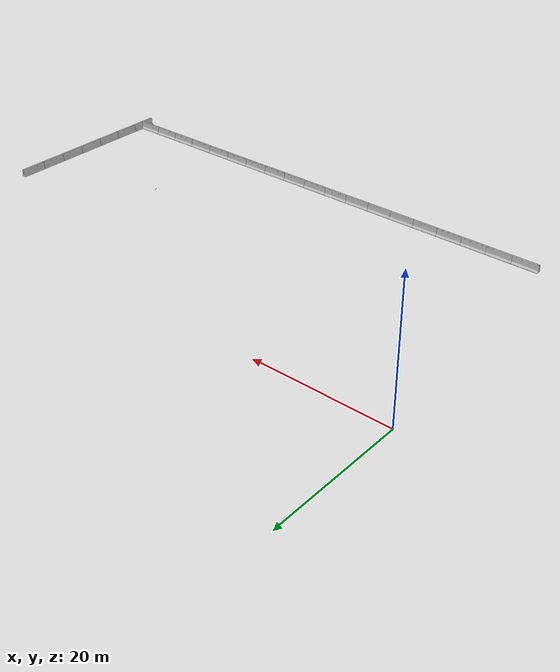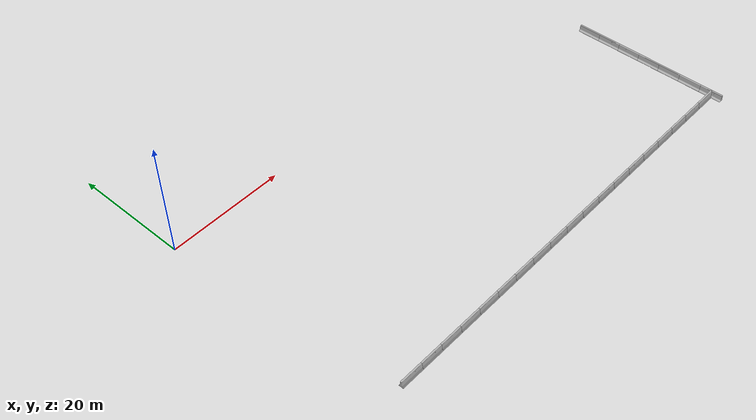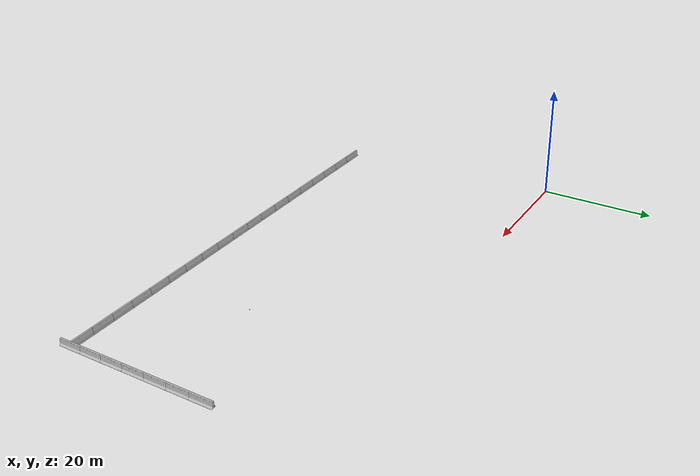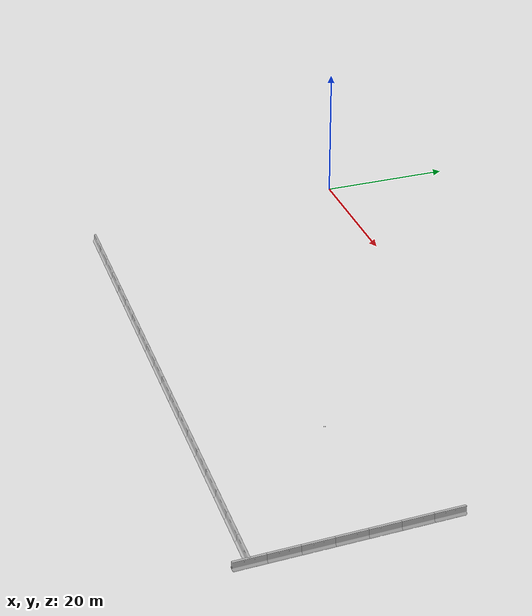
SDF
<sdf version="1.4">
 <world name="default">
  <include><uri>model://sun</uri></include>
  <model name="wrench10">
   <pose>60.17 -23.75 0.54675 1.57079632679 0 1.57079632679</pose>
   <static>0</static>
   <link name="link">
    <inertial>
     <mass>0.0847</mass>
     <pose>0 0 0 -0.122173 0 0</pose>
     <inertia>
      <ixx>0.000185</ixx>
      <ixy>0.0000000</ixy>
      <ixz>-0.000000</ixz>
      <iyy>0.00000522</iyy>
      <iyz>-0.00000</iyz>
      <izz>0.000184</izz>
     </inertia>
    </inertial>
    <visual name="visual">
     <geometry><mesh><uri>file://wrench.DAE</uri><scale>0.77 0.77 1</scale></mesh></geometry>
     <material>
      <script><uri>file://media/materials/scripts/gazebo.material</uri><name>Gazebo/Grey</name></script>
      <shader type="pixel"><normal_map>__default__</normal_map></shader>
      <ambient>0.3 0.3 0.3 1</ambient>
      <diffuse>0.7 0.7 0.7 1</diffuse>
      <specular>0.01 0.01 0.01 1</specular>
      <emissive>0 0 0 1</emissive>
     </material>
    </visual>
    <collision name="collision">
     <geometry><mesh><uri>file://wrench.DAE</uri><scale>0.77 0.77 1</scale></mesh></geometry>
     <surface><friction><ode><mu>0.3</mu><mu2>0.3</mu2></ode></friction></surface>
    </collision>
   </link>
  </model>
  <model name="wrench12">
   <pose>60.17 -23.55 0.535 1.57079632679 0 1.57079632679</pose>
   <static>0</static>
   <link name="link">
    <inertial>
     <mass>0.0847</mass>
     <pose>0 0 0 -0.122173 0 0</pose>
     <inertia>
      <ixx>0.000185</ixx>
      <ixy>0.0000000</ixy>
      <ixz>-0.000000</ixz>
      <iyy>0.00000522</iyy>
      <iyz>-0.00000</iyz>
      <izz>0.000184</izz>
     </inertia>
    </inertial>
    <visual name="visual">
     <geometry><mesh><uri>file://wrench.DAE</uri><scale>0.92 0.92 1</scale></mesh></geometry>
     <material>
      <script><uri>file://media/materials/scripts/gazebo.material</uri><name>Gazebo/Grey</name></script>
      <shader type="pixel"><normal_map>__default__</normal_map></shader>
      <ambient>0.3 0.3 0.3 1</ambient>
      <diffuse>0.7 0.7 0.7 1</diffuse>
      <specular>0.01 0.01 0.01 1</specular>
      <emissive>0 0 0 1</emissive>
     </material>
    </visual>
    <collision name="collision">
     <geometry><mesh><uri>file://wrench.DAE</uri><scale>0.92 0.92 1</scale></mesh></geometry>
     <surface><friction><ode><mu>0.3</mu><mu2>0.3</mu2></ode></friction></surface>
    </collision>
   </link>
  </model>
  <model name="wrench13">
   <pose>60.17 -23.60 0.53 1.57079632679 0 1.57079632679</pose>
   <static>0</static>
   <link name="link">
    <inertial>
     <mass>0.0847</mass>
     <pose>0 0 0 -0.122173 0 0</pose>
     <inertia>
      <ixx>0.000185</ixx>
      <ixy>0.0000000</ixy>
      <ixz>-0.000000</ixz>
      <iyy>0.00000522</iyy>
      <iyz>-0.00000</iyz>
      <izz>0.000184</izz>
     </inertia>
    </inertial>
    <visual name="visual">
     <geometry><mesh><uri>file://wrench.DAE</uri><scale>1 1 1</scale></mesh></geometry>
     <material>
      <script><uri>file://media/materials/scripts/gazebo.material</uri><name>Gazebo/Grey</name></script>
      <shader type="pixel"><normal_map>__default__</normal_map></shader>
      <ambient>0.3 0.3 0.3 1</ambient>
      <diffuse>0.7 0.7 0.7 1</diffuse>
      <specular>0.01 0.01 0.01 1</specular>
      <emissive>0 0 0 1</emissive>
     </material>
    </visual>
    <collision name="collision">
     <geometry><mesh><uri>file://wrench.DAE</uri><scale>1 1 1</scale></mesh></geometry>
     <surface><friction><ode><mu>0.3</mu><mu2>0.3</mu2></ode></friction></surface>
    </collision>
   </link>
  </model>
  <model name="wrench18">
   <pose>60.172 -23.70 0.505 1.57079632679 0 1.57079632679</pose>
   <static>0</static>
   <link name="link">
    <inertial>
     <mass>0.3</mass>
     <pose>0 0 0 -0.122173 0 0</pose>
     <inertia>
      <ixx>1.185</ixx>
      <ixy>0.0000000</ixy>
      <ixz>-0.000000</ixz>
      <iyy>1.00522</iyy>
      <iyz>-0.00000</iyz>
      <izz>1.184</izz>
     </inertia>
    </inertial>
    <visual name="visual">
     <geometry><mesh><uri>file://wrench.DAE</uri><scale>1.38 1.38 1</scale></mesh></geometry>
     <material>
      <script><uri>file://media/materials/scripts/gazebo.material</uri><name>Gazebo/Grey</name></script>
      <shader type="pixel"><normal_map>__default__</normal_map></shader>
      <ambient>0.3 0.3 0.3 1</ambient>
      <diffuse>0.7 0.7 0.7 1</diffuse>
      <specular>0.01 0.01 0.01 1</specular>
      <emissive>0 0 0 1</emissive>
     </material>
    </visual>
    <collision name="collision">
     <geometry><mesh><uri>file://wrench.DAE</uri><scale>1.38 1.38 1</scale></mesh></geometry>
     <surface><friction><ode><mu>0.7</mu><mu2>0.7</mu2></ode></friction></surface>
    </collision>
   </link>
  </model>
  <model name="wrench11">
   <pose>60.17 -23.80 0.54675 1.57079632679 0 1.57079632679</pose>
   <static>0</static>
   <link name="link">
    <inertial>
     <mass>0.0847</mass>
     <pose>0 0 0 -0.122173 0 0</pose>
     <inertia>
      <ixx>0.000185</ixx>
      <ixy>0.0000000</ixy>
      <ixz>-0.000000</ixz>
      <iyy>0.00000522</iyy>
      <iyz>-0.00000</iyz>
      <izz>0.000184</izz>
     </inertia>
    </inertial>
    <visual name="visual">
     <geometry><mesh><uri>file://wrench.DAE</uri><scale>0.77 0.77 1</scale></mesh></geometry>
     <material>
      <script><uri>file://media/materials/scripts/gazebo.material</uri><name>Gazebo/Grey</name></script>
      <shader type="pixel"><normal_map>__default__</normal_map></shader>
      <ambient>0.3 0.3 0.3 1</ambient>
      <diffuse>0.7 0.7 0.7 1</diffuse>
      <specular>0.01 0.01 0.01 1</specular>
      <emissive>0 0 0 1</emissive>
     </material>
    </visual>
    <collision name="collision">
     <geometry><mesh><uri>file://wrench.DAE</uri><scale>0.77 0.77 1</scale></mesh></geometry>
     <surface><friction><ode><mu>0.3</mu><mu2>0.3</mu2></ode></friction></surface>
    </collision>
   </link>
  </model>
  <model name="wrench14">
   <pose>60.17 -23.65 0.54675 1.57079632679 0 1.57079632679</pose>
   <static>0</static>
   <link name="link">
    <inertial>
     <mass>0.0847</mass>
     <pose>0 0 0 -0.122173 0 0</pose>
     <inertia>
      <ixx>0.000185</ixx>
      <ixy>0.0000000</ixy>
      <ixz>-0.000000</ixz>
      <iyy>0.00000522</iyy>
      <iyz>-0.00000</iyz>
      <izz>0.000184</izz>
     </inertia>
    </inertial>
    <visual name="visual">
     <geometry><mesh><uri>file://wrench.DAE</uri><scale>0.77 0.77 1</scale></mesh></geometry>
     <material>
      <script><uri>file://media/materials/scripts/gazebo.material</uri><name>Gazebo/Grey</name></script>
      <shader type="pixel"><normal_map>__default__</normal_map></shader>
      <ambient>0.3 0.3 0.3 1</ambient>
      <diffuse>0.7 0.7 0.7 1</diffuse>
      <specular>0.01 0.01 0.01 1</specular>
      <emissive>0 0 0 1</emissive>
     </material>
    </visual>
    <collision name="collision">
     <geometry><mesh><uri>file://wrench.DAE</uri><scale>0.77 0.77 1</scale></mesh></geometry>
     <surface><friction><ode><mu>0.3</mu><mu2>0.3</mu2></ode></friction></surface>
    </collision>
   </link>
  </model>
  <model name="jersey_barrier_71">
   <pose>78 -40 0 0 0 0</pose>
   <static>1</static>
   <link name="link">
    <visual name="visual">
     <geometry><mesh><uri>model://jersey_barrier/meshes/jersey_barrier.dae</uri></mesh></geometry>
    </visual>
    <collision name="upright">
     <pose>0 0 0.5715 0 -0 0</pose>
     <geometry><box><size>4.06542 0.3063 1.143</size></box></geometry>
    </collision>
    <collision name="base">
     <pose>0 0 0.032258 0 -0 0</pose>
     <geometry><box><size>4.06542 0.8107 0.064516</size></box></geometry>
    </collision>
    <collision name="base2">
     <pose>0 0 0.1 0 -0 0</pose>
     <geometry><box><size>4.06542 0.65 0.1</size></box></geometry>
    </collision>
    <collision name="base3">
     <pose>0 0 0.2 0 -0 0</pose>
     <geometry><box><size>4.06542 0.5 0.1</size></box></geometry>
    </collision>
    <collision name="left-angle">
     <pose>0 -0.224 0.2401 0.9 -0 0</pose>
     <geometry><box><size>4.06542 0.5 0.064516</size></box></geometry>
    </collision>
    <collision name="right-angle">
     <pose>0 0.224 0.2401 -0.9 0 0</pose>
     <geometry><box><size>4.06542 0.5 0.064516</size></box></geometry>
    </collision>
    <velocity_decay><linear>0</linear><angular>0</angular></velocity_decay>
   </link>
   <pose>-10 -2 0 0 -0 0</pose>
  </model>
  <model name="jersey_barrier_72">
   <pose>74 -40 0 0 0 0</pose>
   <static>1</static>
   <link name="link">
    <visual name="visual">
     <geometry><mesh><uri>model://jersey_barrier/meshes/jersey_barrier.dae</uri></mesh></geometry>
    </visual>
    <collision name="upright">
     <pose>0 0 0.5715 0 -0 0</pose>
     <geometry><box><size>4.06542 0.3063 1.143</size></box></geometry>
    </collision>
    <collision name="base">
     <pose>0 0 0.032258 0 -0 0</pose>
     <geometry><box><size>4.06542 0.8107 0.064516</size></box></geometry>
    </collision>
    <collision name="base2">
     <pose>0 0 0.1 0 -0 0</pose>
     <geometry><box><size>4.06542 0.65 0.1</size></box></geometry>
    </collision>
    <collision name="base3">
     <pose>0 0 0.2 0 -0 0</pose>
     <geometry><box><size>4.06542 0.5 0.1</size></box></geometry>
    </collision>
    <collision name="left-angle">
     <pose>0 -0.224 0.2401 0.9 -0 0</pose>
     <geometry><box><size>4.06542 0.5 0.064516</size></box></geometry>
    </collision>
    <collision name="right-angle">
     <pose>0 0.224 0.2401 -0.9 0 0</pose>
     <geometry><box><size>4.06542 0.5 0.064516</size></box></geometry>
    </collision>
    <velocity_decay><linear>0</linear><angular>0</angular></velocity_decay>
   </link>
   <pose>-9.55113 3 0 0 -0 0</pose>
  </model>
  <model name="jersey_barrier_73">
   <pose>70 -40 0 0 0 0</pose>
   <static>1</static>
   <link name="link">
    <visual name="visual">
     <geometry><mesh><uri>model://jersey_barrier/meshes/jersey_barrier.dae</uri></mesh></geometry>
    </visual>
    <collision name="upright">
     <pose>0 0 0.5715 0 -0 0</pose>
     <geometry><box><size>4.06542 0.3063 1.143</size></box></geometry>
    </collision>
    <collision name="base">
     <pose>0 0 0.032258 0 -0 0</pose>
     <geometry><box><size>4.06542 0.8107 0.064516</size></box></geometry>
    </collision>
    <collision name="base2">
     <pose>0 0 0.1 0 -0 0</pose>
     <geometry><box><size>4.06542 0.65 0.1</size></box></geometry>
    </collision>
    <collision name="base3">
     <pose>0 0 0.2 0 -0 0</pose>
     <geometry><box><size>4.06542 0.5 0.1</size></box></geometry>
    </collision>
    <collision name="left-angle">
     <pose>0 -0.224 0.2401 0.9 -0 0</pose>
     <geometry><box><size>4.06542 0.5 0.064516</size></box></geometry>
    </collision>
    <collision name="right-angle">
     <pose>0 0.224 0.2401 -0.9 0 0</pose>
     <geometry><box><size>4.06542 0.5 0.064516</size></box></geometry>
    </collision>
    <velocity_decay><linear>0</linear><angular>0</angular></velocity_decay>
   </link>
   <pose>9 -8 0 0 -0 0</pose>
  </model>
  <model name="jersey_barrier_74">
   <pose>66 -40 0 0 0 0</pose>
   <static>1</static>
   <link name="link">
    <visual name="visual">
     <geometry><mesh><uri>model://jersey_barrier/meshes/jersey_barrier.dae</uri></mesh></geometry>
    </visual>
    <collision name="upright">
     <pose>0 0 0.5715 0 -0 0</pose>
     <geometry><box><size>4.06542 0.3063 1.143</size></box></geometry>
    </collision>
    <collision name="base">
     <pose>0 0 0.032258 0 -0 0</pose>
     <geometry><box><size>4.06542 0.8107 0.064516</size></box></geometry>
    </collision>
    <collision name="base2">
     <pose>0 0 0.1 0 -0 0</pose>
     <geometry><box><size>4.06542 0.65 0.1</size></box></geometry>
    </collision>
    <collision name="base3">
     <pose>0 0 0.2 0 -0 0</pose>
     <geometry><box><size>4.06542 0.5 0.1</size></box></geometry>
    </collision>
    <collision name="left-angle">
     <pose>0 -0.224 0.2401 0.9 -0 0</pose>
     <geometry><box><size>4.06542 0.5 0.064516</size></box></geometry>
    </collision>
    <collision name="right-angle">
     <pose>0 0.224 0.2401 -0.9 0 0</pose>
     <geometry><box><size>4.06542 0.5 0.064516</size></box></geometry>
    </collision>
    <velocity_decay><linear>0</linear><angular>0</angular></velocity_decay>
   </link>
   <pose>10 7 0 0 -0 0</pose>
  </model>
  <model name="jersey_barrier_75">
   <pose>62 -40 0 0 0 0</pose>
   <static>1</static>
   <link name="link">
    <visual name="visual">
     <geometry><mesh><uri>model://jersey_barrier/meshes/jersey_barrier.dae</uri></mesh></geometry>
    </visual>
    <collision name="upright">
     <pose>0 0 0.5715 0 -0 0</pose>
     <geometry><box><size>4.06542 0.3063 1.143</size></box></geometry>
    </collision>
    <collision name="base">
     <pose>0 0 0.032258 0 -0 0</pose>
     <geometry><box><size>4.06542 0.8107 0.064516</size></box></geometry>
    </collision>
    <collision name="base2">
     <pose>0 0 0.1 0 -0 0</pose>
     <geometry><box><size>4.06542 0.65 0.1</size></box></geometry>
    </collision>
    <collision name="base3">
     <pose>0 0 0.2 0 -0 0</pose>
     <geometry><box><size>4.06542 0.5 0.1</size></box></geometry>
    </collision>
    <collision name="left-angle">
     <pose>0 -0.224 0.2401 0.9 -0 0</pose>
     <geometry><box><size>4.06542 0.5 0.064516</size></box></geometry>
    </collision>
    <collision name="right-angle">
     <pose>0 0.224 0.2401 -0.9 0 0</pose>
     <geometry><box><size>4.06542 0.5 0.064516</size></box></geometry>
    </collision>
    <velocity_decay><linear>0</linear><angular>0</angular></velocity_decay>
   </link>
   <pose>-9 7.4858 0 0 -0 0</pose>
  </model>
  <model name="jersey_barrier_76">
   <pose>58 -40 0 0 0 0</pose>
   <static>1</static>
   <link name="link">
    <visual name="visual">
     <geometry><mesh><uri>model://jersey_barrier/meshes/jersey_barrier.dae</uri></mesh></geometry>
    </visual>
    <collision name="upright">
     <pose>0 0 0.5715 0 -0 0</pose>
     <geometry><box><size>4.06542 0.3063 1.143</size></box></geometry>
    </collision>
    <collision name="base">
     <pose>0 0 0.032258 0 -0 0</pose>
     <geometry><box><size>4.06542 0.8107 0.064516</size></box></geometry>
    </collision>
    <collision name="base2">
     <pose>0 0 0.1 0 -0 0</pose>
     <geometry><box><size>4.06542 0.65 0.1</size></box></geometry>
    </collision>
    <collision name="base3">
     <pose>0 0 0.2 0 -0 0</pose>
     <geometry><box><size>4.06542 0.5 0.1</size></box></geometry>
    </collision>
    <collision name="left-angle">
     <pose>0 -0.224 0.2401 0.9 -0 0</pose>
     <geometry><box><size>4.06542 0.5 0.064516</size></box></geometry>
    </collision>
    <collision name="right-angle">
     <pose>0 0.224 0.2401 -0.9 0 0</pose>
     <geometry><box><size>4.06542 0.5 0.064516</size></box></geometry>
    </collision>
    <velocity_decay><linear>0</linear><angular>0</angular></velocity_decay>
   </link>
   <pose>2.45495 0 0 0 -0 0</pose>
  </model>
  <model name="jersey_barrier_77">
   <pose>54 -40 0 0 0 0</pose>
   <static>1</static>
   <link name="link">
    <visual name="visual">
     <geometry><mesh><uri>model://jersey_barrier/meshes/jersey_barrier.dae</uri></mesh></geometry>
    </visual>
    <collision name="upright">
     <pose>0 0 0.5715 0 -0 0</pose>
     <geometry><box><size>4.06542 0.3063 1.143</size></box></geometry>
    </collision>
    <collision name="base">
     <pose>0 0 0.032258 0 -0 0</pose>
     <geometry><box><size>4.06542 0.8107 0.064516</size></box></geometry>
    </collision>
    <collision name="base2">
     <pose>0 0 0.1 0 -0 0</pose>
     <geometry><box><size>4.06542 0.65 0.1</size></box></geometry>
    </collision>
    <collision name="base3">
     <pose>0 0 0.2 0 -0 0</pose>
     <geometry><box><size>4.06542 0.5 0.1</size></box></geometry>
    </collision>
    <collision name="left-angle">
     <pose>0 -0.224 0.2401 0.9 -0 0</pose>
     <geometry><box><size>4.06542 0.5 0.064516</size></box></geometry>
    </collision>
    <collision name="right-angle">
     <pose>0 0.224 0.2401 -0.9 0 0</pose>
     <geometry><box><size>4.06542 0.5 0.064516</size></box></geometry>
    </collision>
    <velocity_decay><linear>0</linear><angular>0</angular></velocity_decay>
   </link>
   <pose>2.45495 0 0 0 -0 0</pose>
  </model>
  <model name="jersey_barrier_78">
   <pose>50 -40 0 0 0 0</pose>
   <static>1</static>
   <link name="link">
    <visual name="visual">
     <geometry><mesh><uri>model://jersey_barrier/meshes/jersey_barrier.dae</uri></mesh></geometry>
    </visual>
    <collision name="upright">
     <pose>0 0 0.5715 0 -0 0</pose>
     <geometry><box><size>4.06542 0.3063 1.143</size></box></geometry>
    </collision>
    <collision name="base">
     <pose>0 0 0.032258 0 -0 0</pose>
     <geometry><box><size>4.06542 0.8107 0.064516</size></box></geometry>
    </collision>
    <collision name="base2">
     <pose>0 0 0.1 0 -0 0</pose>
     <geometry><box><size>4.06542 0.65 0.1</size></box></geometry>
    </collision>
    <collision name="base3">
     <pose>0 0 0.2 0 -0 0</pose>
     <geometry><box><size>4.06542 0.5 0.1</size></box></geometry>
    </collision>
    <collision name="left-angle">
     <pose>0 -0.224 0.2401 0.9 -0 0</pose>
     <geometry><box><size>4.06542 0.5 0.064516</size></box></geometry>
    </collision>
    <collision name="right-angle">
     <pose>0 0.224 0.2401 -0.9 0 0</pose>
     <geometry><box><size>4.06542 0.5 0.064516</size></box></geometry>
    </collision>
    <velocity_decay><linear>0</linear><angular>0</angular></velocity_decay>
   </link>
   <pose>-10 -2 0 0 -0 0</pose>
  </model>
  <model name="jersey_barrier_79">
   <pose>46 -40 0 0 0 0</pose>
   <static>1</static>
   <link name="link">
    <visual name="visual">
     <geometry><mesh><uri>model://jersey_barrier/meshes/jersey_barrier.dae</uri></mesh></geometry>
    </visual>
    <collision name="upright">
     <pose>0 0 0.5715 0 -0 0</pose>
     <geometry><box><size>4.06542 0.3063 1.143</size></box></geometry>
    </collision>
    <collision name="base">
     <pose>0 0 0.032258 0 -0 0</pose>
     <geometry><box><size>4.06542 0.8107 0.064516</size></box></geometry>
    </collision>
    <collision name="base2">
     <pose>0 0 0.1 0 -0 0</pose>
     <geometry><box><size>4.06542 0.65 0.1</size></box></geometry>
    </collision>
    <collision name="base3">
     <pose>0 0 0.2 0 -0 0</pose>
     <geometry><box><size>4.06542 0.5 0.1</size></box></geometry>
    </collision>
    <collision name="left-angle">
     <pose>0 -0.224 0.2401 0.9 -0 0</pose>
     <geometry><box><size>4.06542 0.5 0.064516</size></box></geometry>
    </collision>
    <collision name="right-angle">
     <pose>0 0.224 0.2401 -0.9 0 0</pose>
     <geometry><box><size>4.06542 0.5 0.064516</size></box></geometry>
    </collision>
    <velocity_decay><linear>0</linear><angular>0</angular></velocity_decay>
   </link>
   <pose>-9.55113 3 0 0 -0 0</pose>
  </model>
  <model name="jersey_barrier_80">
   <pose>42 -40 0 0 0 0</pose>
   <static>1</static>
   <link name="link">
    <visual name="visual">
     <geometry><mesh><uri>model://jersey_barrier/meshes/jersey_barrier.dae</uri></mesh></geometry>
    </visual>
    <collision name="upright">
     <pose>0 0 0.5715 0 -0 0</pose>
     <geometry><box><size>4.06542 0.3063 1.143</size></box></geometry>
    </collision>
    <collision name="base">
     <pose>0 0 0.032258 0 -0 0</pose>
     <geometry><box><size>4.06542 0.8107 0.064516</size></box></geometry>
    </collision>
    <collision name="base2">
     <pose>0 0 0.1 0 -0 0</pose>
     <geometry><box><size>4.06542 0.65 0.1</size></box></geometry>
    </collision>
    <collision name="base3">
     <pose>0 0 0.2 0 -0 0</pose>
     <geometry><box><size>4.06542 0.5 0.1</size></box></geometry>
    </collision>
    <collision name="left-angle">
     <pose>0 -0.224 0.2401 0.9 -0 0</pose>
     <geometry><box><size>4.06542 0.5 0.064516</size></box></geometry>
    </collision>
    <collision name="right-angle">
     <pose>0 0.224 0.2401 -0.9 0 0</pose>
     <geometry><box><size>4.06542 0.5 0.064516</size></box></geometry>
    </collision>
    <velocity_decay><linear>0</linear><angular>0</angular></velocity_decay>
   </link>
   <pose>9 -8 0 0 -0 0</pose>
  </model>
  <model name="jersey_barrier_81">
   <pose>38 -40 0 0 0 0</pose>
   <static>1</static>
   <link name="link">
    <visual name="visual">
     <geometry><mesh><uri>model://jersey_barrier/meshes/jersey_barrier.dae</uri></mesh></geometry>
    </visual>
    <collision name="upright">
     <pose>0 0 0.5715 0 -0 0</pose>
     <geometry><box><size>4.06542 0.3063 1.143</size></box></geometry>
    </collision>
    <collision name="base">
     <pose>0 0 0.032258 0 -0 0</pose>
     <geometry><box><size>4.06542 0.8107 0.064516</size></box></geometry>
    </collision>
    <collision name="base2">
     <pose>0 0 0.1 0 -0 0</pose>
     <geometry><box><size>4.06542 0.65 0.1</size></box></geometry>
    </collision>
    <collision name="base3">
     <pose>0 0 0.2 0 -0 0</pose>
     <geometry><box><size>4.06542 0.5 0.1</size></box></geometry>
    </collision>
    <collision name="left-angle">
     <pose>0 -0.224 0.2401 0.9 -0 0</pose>
     <geometry><box><size>4.06542 0.5 0.064516</size></box></geometry>
    </collision>
    <collision name="right-angle">
     <pose>0 0.224 0.2401 -0.9 0 0</pose>
     <geometry><box><size>4.06542 0.5 0.064516</size></box></geometry>
    </collision>
    <velocity_decay><linear>0</linear><angular>0</angular></velocity_decay>
   </link>
   <pose>10 7 0 0 -0 0</pose>
  </model>
  <model name="jersey_barrier_82">
   <pose>34 -40 0 0 0 0</pose>
   <static>1</static>
   <link name="link">
    <visual name="visual">
     <geometry><mesh><uri>model://jersey_barrier/meshes/jersey_barrier.dae</uri></mesh></geometry>
    </visual>
    <collision name="upright">
     <pose>0 0 0.5715 0 -0 0</pose>
     <geometry><box><size>4.06542 0.3063 1.143</size></box></geometry>
    </collision>
    <collision name="base">
     <pose>0 0 0.032258 0 -0 0</pose>
     <geometry><box><size>4.06542 0.8107 0.064516</size></box></geometry>
    </collision>
    <collision name="base2">
     <pose>0 0 0.1 0 -0 0</pose>
     <geometry><box><size>4.06542 0.65 0.1</size></box></geometry>
    </collision>
    <collision name="base3">
     <pose>0 0 0.2 0 -0 0</pose>
     <geometry><box><size>4.06542 0.5 0.1</size></box></geometry>
    </collision>
    <collision name="left-angle">
     <pose>0 -0.224 0.2401 0.9 -0 0</pose>
     <geometry><box><size>4.06542 0.5 0.064516</size></box></geometry>
    </collision>
    <collision name="right-angle">
     <pose>0 0.224 0.2401 -0.9 0 0</pose>
     <geometry><box><size>4.06542 0.5 0.064516</size></box></geometry>
    </collision>
    <velocity_decay><linear>0</linear><angular>0</angular></velocity_decay>
   </link>
   <pose>-9 7.4858 0 0 -0 0</pose>
  </model>
  <model name="jersey_barrier_83">
   <pose>30 -40 0 0 0 0</pose>
   <static>1</static>
   <link name="link">
    <visual name="visual">
     <geometry><mesh><uri>model://jersey_barrier/meshes/jersey_barrier.dae</uri></mesh></geometry>
    </visual>
    <collision name="upright">
     <pose>0 0 0.5715 0 -0 0</pose>
     <geometry><box><size>4.06542 0.3063 1.143</size></box></geometry>
    </collision>
    <collision name="base">
     <pose>0 0 0.032258 0 -0 0</pose>
     <geometry><box><size>4.06542 0.8107 0.064516</size></box></geometry>
    </collision>
    <collision name="base2">
     <pose>0 0 0.1 0 -0 0</pose>
     <geometry><box><size>4.06542 0.65 0.1</size></box></geometry>
    </collision>
    <collision name="base3">
     <pose>0 0 0.2 0 -0 0</pose>
     <geometry><box><size>4.06542 0.5 0.1</size></box></geometry>
    </collision>
    <collision name="left-angle">
     <pose>0 -0.224 0.2401 0.9 -0 0</pose>
     <geometry><box><size>4.06542 0.5 0.064516</size></box></geometry>
    </collision>
    <collision name="right-angle">
     <pose>0 0.224 0.2401 -0.9 0 0</pose>
     <geometry><box><size>4.06542 0.5 0.064516</size></box></geometry>
    </collision>
    <velocity_decay><linear>0</linear><angular>0</angular></velocity_decay>
   </link>
   <pose>2.45495 0 0 0 -0 0</pose>
  </model>
  <model name="jersey_barrier_84">
   <pose>26 -40 0 0 0 0</pose>
   <static>1</static>
   <link name="link">
    <visual name="visual">
     <geometry><mesh><uri>model://jersey_barrier/meshes/jersey_barrier.dae</uri></mesh></geometry>
    </visual>
    <collision name="upright">
     <pose>0 0 0.5715 0 -0 0</pose>
     <geometry><box><size>4.06542 0.3063 1.143</size></box></geometry>
    </collision>
    <collision name="base">
     <pose>0 0 0.032258 0 -0 0</pose>
     <geometry><box><size>4.06542 0.8107 0.064516</size></box></geometry>
    </collision>
    <collision name="base2">
     <pose>0 0 0.1 0 -0 0</pose>
     <geometry><box><size>4.06542 0.65 0.1</size></box></geometry>
    </collision>
    <collision name="base3">
     <pose>0 0 0.2 0 -0 0</pose>
     <geometry><box><size>4.06542 0.5 0.1</size></box></geometry>
    </collision>
    <collision name="left-angle">
     <pose>0 -0.224 0.2401 0.9 -0 0</pose>
     <geometry><box><size>4.06542 0.5 0.064516</size></box></geometry>
    </collision>
    <collision name="right-angle">
     <pose>0 0.224 0.2401 -0.9 0 0</pose>
     <geometry><box><size>4.06542 0.5 0.064516</size></box></geometry>
    </collision>
    <velocity_decay><linear>0</linear><angular>0</angular></velocity_decay>
   </link>
   <pose>2.45495 0 0 0 -0 0</pose>
  </model>
  <model name="jersey_barrier_85">
   <pose>22 -40 0 0 0 0</pose>
   <static>1</static>
   <link name="link">
    <visual name="visual">
     <geometry><mesh><uri>model://jersey_barrier/meshes/jersey_barrier.dae</uri></mesh></geometry>
    </visual>
    <collision name="upright">
     <pose>0 0 0.5715 0 -0 0</pose>
     <geometry><box><size>4.06542 0.3063 1.143</size></box></geometry>
    </collision>
    <collision name="base">
     <pose>0 0 0.032258 0 -0 0</pose>
     <geometry><box><size>4.06542 0.8107 0.064516</size></box></geometry>
    </collision>
    <collision name="base2">
     <pose>0 0 0.1 0 -0 0</pose>
     <geometry><box><size>4.06542 0.65 0.1</size></box></geometry>
    </collision>
    <collision name="base3">
     <pose>0 0 0.2 0 -0 0</pose>
     <geometry><box><size>4.06542 0.5 0.1</size></box></geometry>
    </collision>
    <collision name="left-angle">
     <pose>0 -0.224 0.2401 0.9 -0 0</pose>
     <geometry><box><size>4.06542 0.5 0.064516</size></box></geometry>
    </collision>
    <collision name="right-angle">
     <pose>0 0.224 0.2401 -0.9 0 0</pose>
     <geometry><box><size>4.06542 0.5 0.064516</size></box></geometry>
    </collision>
    <velocity_decay><linear>0</linear><angular>0</angular></velocity_decay>
   </link>
   <pose>-10 -2 0 0 -0 0</pose>
  </model>
  <model name="jersey_barrier_86">
   <pose>18 -40 0 0 0 0</pose>
   <static>1</static>
   <link name="link">
    <visual name="visual">
     <geometry><mesh><uri>model://jersey_barrier/meshes/jersey_barrier.dae</uri></mesh></geometry>
    </visual>
    <collision name="upright">
     <pose>0 0 0.5715 0 -0 0</pose>
     <geometry><box><size>4.06542 0.3063 1.143</size></box></geometry>
    </collision>
    <collision name="base">
     <pose>0 0 0.032258 0 -0 0</pose>
     <geometry><box><size>4.06542 0.8107 0.064516</size></box></geometry>
    </collision>
    <collision name="base2">
     <pose>0 0 0.1 0 -0 0</pose>
     <geometry><box><size>4.06542 0.65 0.1</size></box></geometry>
    </collision>
    <collision name="base3">
     <pose>0 0 0.2 0 -0 0</pose>
     <geometry><box><size>4.06542 0.5 0.1</size></box></geometry>
    </collision>
    <collision name="left-angle">
     <pose>0 -0.224 0.2401 0.9 -0 0</pose>
     <geometry><box><size>4.06542 0.5 0.064516</size></box></geometry>
    </collision>
    <collision name="right-angle">
     <pose>0 0.224 0.2401 -0.9 0 0</pose>
     <geometry><box><size>4.06542 0.5 0.064516</size></box></geometry>
    </collision>
    <velocity_decay><linear>0</linear><angular>0</angular></velocity_decay>
   </link>
   <pose>-9.55113 3 0 0 -0 0</pose>
  </model>
  <model name="jersey_barrier_87">
   <pose>14 -40 0 0 0 0</pose>
   <static>1</static>
   <link name="link">
    <visual name="visual">
     <geometry><mesh><uri>model://jersey_barrier/meshes/jersey_barrier.dae</uri></mesh></geometry>
    </visual>
    <collision name="upright">
     <pose>0 0 0.5715 0 -0 0</pose>
     <geometry><box><size>4.06542 0.3063 1.143</size></box></geometry>
    </collision>
    <collision name="base">
     <pose>0 0 0.032258 0 -0 0</pose>
     <geometry><box><size>4.06542 0.8107 0.064516</size></box></geometry>
    </collision>
    <collision name="base2">
     <pose>0 0 0.1 0 -0 0</pose>
     <geometry><box><size>4.06542 0.65 0.1</size></box></geometry>
    </collision>
    <collision name="base3">
     <pose>0 0 0.2 0 -0 0</pose>
     <geometry><box><size>4.06542 0.5 0.1</size></box></geometry>
    </collision>
    <collision name="left-angle">
     <pose>0 -0.224 0.2401 0.9 -0 0</pose>
     <geometry><box><size>4.06542 0.5 0.064516</size></box></geometry>
    </collision>
    <collision name="right-angle">
     <pose>0 0.224 0.2401 -0.9 0 0</pose>
     <geometry><box><size>4.06542 0.5 0.064516</size></box></geometry>
    </collision>
    <velocity_decay><linear>0</linear><angular>0</angular></velocity_decay>
   </link>
   <pose>9 -8 0 0 -0 0</pose>
  </model>
  <model name="jersey_barrier_88">
   <pose>10 -40 0 0 0 0</pose>
   <static>1</static>
   <link name="link">
    <visual name="visual">
     <geometry><mesh><uri>model://jersey_barrier/meshes/jersey_barrier.dae</uri></mesh></geometry>
    </visual>
    <collision name="upright">
     <pose>0 0 0.5715 0 -0 0</pose>
     <geometry><box><size>4.06542 0.3063 1.143</size></box></geometry>
    </collision>
    <collision name="base">
     <pose>0 0 0.032258 0 -0 0</pose>
     <geometry><box><size>4.06542 0.8107 0.064516</size></box></geometry>
    </collision>
    <collision name="base2">
     <pose>0 0 0.1 0 -0 0</pose>
     <geometry><box><size>4.06542 0.65 0.1</size></box></geometry>
    </collision>
    <collision name="base3">
     <pose>0 0 0.2 0 -0 0</pose>
     <geometry><box><size>4.06542 0.5 0.1</size></box></geometry>
    </collision>
    <collision name="left-angle">
     <pose>0 -0.224 0.2401 0.9 -0 0</pose>
     <geometry><box><size>4.06542 0.5 0.064516</size></box></geometry>
    </collision>
    <collision name="right-angle">
     <pose>0 0.224 0.2401 -0.9 0 0</pose>
     <geometry><box><size>4.06542 0.5 0.064516</size></box></geometry>
    </collision>
    <velocity_decay><linear>0</linear><angular>0</angular></velocity_decay>
   </link>
   <pose>10 7 0 0 -0 0</pose>
  </model>
  <model name="jersey_barrier_89">
   <pose>6 -40 0 0 0 0</pose>
   <static>1</static>
   <link name="link">
    <visual name="visual">
     <geometry><mesh><uri>model://jersey_barrier/meshes/jersey_barrier.dae</uri></mesh></geometry>
    </visual>
    <collision name="upright">
     <pose>0 0 0.5715 0 -0 0</pose>
     <geometry><box><size>4.06542 0.3063 1.143</size></box></geometry>
    </collision>
    <collision name="base">
     <pose>0 0 0.032258 0 -0 0</pose>
     <geometry><box><size>4.06542 0.8107 0.064516</size></box></geometry>
    </collision>
    <collision name="base2">
     <pose>0 0 0.1 0 -0 0</pose>
     <geometry><box><size>4.06542 0.65 0.1</size></box></geometry>
    </collision>
    <collision name="base3">
     <pose>0 0 0.2 0 -0 0</pose>
     <geometry><box><size>4.06542 0.5 0.1</size></box></geometry>
    </collision>
    <collision name="left-angle">
     <pose>0 -0.224 0.2401 0.9 -0 0</pose>
     <geometry><box><size>4.06542 0.5 0.064516</size></box></geometry>
    </collision>
    <collision name="right-angle">
     <pose>0 0.224 0.2401 -0.9 0 0</pose>
     <geometry><box><size>4.06542 0.5 0.064516</size></box></geometry>
    </collision>
    <velocity_decay><linear>0</linear><angular>0</angular></velocity_decay>
   </link>
   <pose>-9 7.4858 0 0 -0 0</pose>
  </model>
  <model name="jersey_barrier_114">
   <pose>80 -16 0 0 0 1.57079632679</pose>
   <static>1</static>
   <link name="link">
    <visual name="visual">
     <geometry><mesh><uri>model://jersey_barrier/meshes/jersey_barrier.dae</uri></mesh></geometry>
    </visual>
    <collision name="upright">
     <pose>0 0 0.5715 0 -0 0</pose>
     <geometry><box><size>4.06542 0.3063 1.143</size></box></geometry>
    </collision>
    <collision name="base">
     <pose>0 0 0.032258 0 -0 0</pose>
     <geometry><box><size>4.06542 0.8107 0.064516</size></box></geometry>
    </collision>
    <collision name="base2">
     <pose>0 0 0.1 0 -0 0</pose>
     <geometry><box><size>4.06542 0.65 0.1</size></box></geometry>
    </collision>
    <collision name="base3">
     <pose>0 0 0.2 0 -0 0</pose>
     <geometry><box><size>4.06542 0.5 0.1</size></box></geometry>
    </collision>
    <collision name="left-angle">
     <pose>0 -0.224 0.2401 0.9 -0 0</pose>
     <geometry><box><size>4.06542 0.5 0.064516</size></box></geometry>
    </collision>
    <collision name="right-angle">
     <pose>0 0.224 0.2401 -0.9 0 0</pose>
     <geometry><box><size>4.06542 0.5 0.064516</size></box></geometry>
    </collision>
    <velocity_decay><linear>0</linear><angular>0</angular></velocity_decay>
   </link>
   <pose>-7.50675 10 0 0 -0 0</pose>
  </model>
  <model name="jersey_barrier_115">
   <pose>80 -20 0 0 0 1.57079632679</pose>
   <static>1</static>
   <link name="link">
    <visual name="visual">
     <geometry><mesh><uri>model://jersey_barrier/meshes/jersey_barrier.dae</uri></mesh></geometry>
    </visual>
    <collision name="upright">
     <pose>0 0 0.5715 0 -0 0</pose>
     <geometry><box><size>4.06542 0.3063 1.143</size></box></geometry>
    </collision>
    <collision name="base">
     <pose>0 0 0.032258 0 -0 0</pose>
     <geometry><box><size>4.06542 0.8107 0.064516</size></box></geometry>
    </collision>
    <collision name="base2">
     <pose>0 0 0.1 0 -0 0</pose>
     <geometry><box><size>4.06542 0.65 0.1</size></box></geometry>
    </collision>
    <collision name="base3">
     <pose>0 0 0.2 0 -0 0</pose>
     <geometry><box><size>4.06542 0.5 0.1</size></box></geometry>
    </collision>
    <collision name="left-angle">
     <pose>0 -0.224 0.2401 0.9 -0 0</pose>
     <geometry><box><size>4.06542 0.5 0.064516</size></box></geometry>
    </collision>
    <collision name="right-angle">
     <pose>0 0.224 0.2401 -0.9 0 0</pose>
     <geometry><box><size>4.06542 0.5 0.064516</size></box></geometry>
    </collision>
    <velocity_decay><linear>0</linear><angular>0</angular></velocity_decay>
   </link>
   <pose>-2 10 0 0 -0 0</pose>
  </model>
  <model name="jersey_barrier_116">
   <pose>80 -24 0 0 0 1.57079632679</pose>
   <static>1</static>
   <link name="link">
    <visual name="visual">
     <geometry><mesh><uri>model://jersey_barrier/meshes/jersey_barrier.dae</uri></mesh></geometry>
    </visual>
    <collision name="upright">
     <pose>0 0 0.5715 0 -0 0</pose>
     <geometry><box><size>4.06542 0.3063 1.143</size></box></geometry>
    </collision>
    <collision name="base">
     <pose>0 0 0.032258 0 -0 0</pose>
     <geometry><box><size>4.06542 0.8107 0.064516</size></box></geometry>
    </collision>
    <collision name="base2">
     <pose>0 0 0.1 0 -0 0</pose>
     <geometry><box><size>4.06542 0.65 0.1</size></box></geometry>
    </collision>
    <collision name="base3">
     <pose>0 0 0.2 0 -0 0</pose>
     <geometry><box><size>4.06542 0.5 0.1</size></box></geometry>
    </collision>
    <collision name="left-angle">
     <pose>0 -0.224 0.2401 0.9 -0 0</pose>
     <geometry><box><size>4.06542 0.5 0.064516</size></box></geometry>
    </collision>
    <collision name="right-angle">
     <pose>0 0.224 0.2401 -0.9 0 0</pose>
     <geometry><box><size>4.06542 0.5 0.064516</size></box></geometry>
    </collision>
    <velocity_decay><linear>0</linear><angular>0</angular></velocity_decay>
   </link>
   <pose>3 10 0 0 -0 0</pose>
  </model>
  <model name="jersey_barrier_117">
   <pose>80 -28 0 0 0 1.57079632679</pose>
   <static>1</static>
   <link name="link">
    <visual name="visual">
     <geometry><mesh><uri>model://jersey_barrier/meshes/jersey_barrier.dae</uri></mesh></geometry>
    </visual>
    <collision name="upright">
     <pose>0 0 0.5715 0 -0 0</pose>
     <geometry><box><size>4.06542 0.3063 1.143</size></box></geometry>
    </collision>
    <collision name="base">
     <pose>0 0 0.032258 0 -0 0</pose>
     <geometry><box><size>4.06542 0.8107 0.064516</size></box></geometry>
    </collision>
    <collision name="base2">
     <pose>0 0 0.1 0 -0 0</pose>
     <geometry><box><size>4.06542 0.65 0.1</size></box></geometry>
    </collision>
    <collision name="base3">
     <pose>0 0 0.2 0 -0 0</pose>
     <geometry><box><size>4.06542 0.5 0.1</size></box></geometry>
    </collision>
    <collision name="left-angle">
     <pose>0 -0.224 0.2401 0.9 -0 0</pose>
     <geometry><box><size>4.06542 0.5 0.064516</size></box></geometry>
    </collision>
    <collision name="right-angle">
     <pose>0 0.224 0.2401 -0.9 0 0</pose>
     <geometry><box><size>4.06542 0.5 0.064516</size></box></geometry>
    </collision>
    <velocity_decay><linear>0</linear><angular>0</angular></velocity_decay>
   </link>
   <pose>8 10 0 0 -0 0</pose>
  </model>
  <model name="jersey_barrier_118">
   <pose>80 -32 0 0 0 1.57079632679</pose>
   <static>1</static>
   <link name="link">
    <visual name="visual">
     <geometry><mesh><uri>model://jersey_barrier/meshes/jersey_barrier.dae</uri></mesh></geometry>
    </visual>
    <collision name="upright">
     <pose>0 0 0.5715 0 -0 0</pose>
     <geometry><box><size>4.06542 0.3063 1.143</size></box></geometry>
    </collision>
    <collision name="base">
     <pose>0 0 0.032258 0 -0 0</pose>
     <geometry><box><size>4.06542 0.8107 0.064516</size></box></geometry>
    </collision>
    <collision name="base2">
     <pose>0 0 0.1 0 -0 0</pose>
     <geometry><box><size>4.06542 0.65 0.1</size></box></geometry>
    </collision>
    <collision name="base3">
     <pose>0 0 0.2 0 -0 0</pose>
     <geometry><box><size>4.06542 0.5 0.1</size></box></geometry>
    </collision>
    <collision name="left-angle">
     <pose>0 -0.224 0.2401 0.9 -0 0</pose>
     <geometry><box><size>4.06542 0.5 0.064516</size></box></geometry>
    </collision>
    <collision name="right-angle">
     <pose>0 0.224 0.2401 -0.9 0 0</pose>
     <geometry><box><size>4.06542 0.5 0.064516</size></box></geometry>
    </collision>
    <velocity_decay><linear>0</linear><angular>0</angular></velocity_decay>
   </link>
   <pose>9 -4 0 0 -0 0</pose>
  </model>
  <model name="jersey_barrier_119">
   <pose>80 -36 0 0 0 1.57079632679</pose>
   <static>1</static>
   <link name="link">
    <visual name="visual">
     <geometry><mesh><uri>model://jersey_barrier/meshes/jersey_barrier.dae</uri></mesh></geometry>
    </visual>
    <collision name="upright">
     <pose>0 0 0.5715 0 -0 0</pose>
     <geometry><box><size>4.06542 0.3063 1.143</size></box></geometry>
    </collision>
    <collision name="base">
     <pose>0 0 0.032258 0 -0 0</pose>
     <geometry><box><size>4.06542 0.8107 0.064516</size></box></geometry>
    </collision>
    <collision name="base2">
     <pose>0 0 0.1 0 -0 0</pose>
     <geometry><box><size>4.06542 0.65 0.1</size></box></geometry>
    </collision>
    <collision name="base3">
     <pose>0 0 0.2 0 -0 0</pose>
     <geometry><box><size>4.06542 0.5 0.1</size></box></geometry>
    </collision>
    <collision name="left-angle">
     <pose>0 -0.224 0.2401 0.9 -0 0</pose>
     <geometry><box><size>4.06542 0.5 0.064516</size></box></geometry>
    </collision>
    <collision name="right-angle">
     <pose>0 0.224 0.2401 -0.9 0 0</pose>
     <geometry><box><size>4.06542 0.5 0.064516</size></box></geometry>
    </collision>
    <velocity_decay><linear>0</linear><angular>0</angular></velocity_decay>
   </link>
   <pose>9 3 0 0 -0 0</pose>
  </model>
  <model name="jersey_barrier_120">
   <pose>80 -40 0 0 0 1.57079632679</pose>
   <static>1</static>
   <link name="link">
    <visual name="visual">
     <geometry><mesh><uri>model://jersey_barrier/meshes/jersey_barrier.dae</uri></mesh></geometry>
    </visual>
    <collision name="upright">
     <pose>0 0 0.5715 0 -0 0</pose>
     <geometry><box><size>4.06542 0.3063 1.143</size></box></geometry>
    </collision>
    <collision name="base">
     <pose>0 0 0.032258 0 -0 0</pose>
     <geometry><box><size>4.06542 0.8107 0.064516</size></box></geometry>
    </collision>
    <collision name="base2">
     <pose>0 0 0.1 0 -0 0</pose>
     <geometry><box><size>4.06542 0.65 0.1</size></box></geometry>
    </collision>
    <collision name="base3">
     <pose>0 0 0.2 0 -0 0</pose>
     <geometry><box><size>4.06542 0.5 0.1</size></box></geometry>
    </collision>
    <collision name="left-angle">
     <pose>0 -0.224 0.2401 0.9 -0 0</pose>
     <geometry><box><size>4.06542 0.5 0.064516</size></box></geometry>
    </collision>
    <collision name="right-angle">
     <pose>0 0.224 0.2401 -0.9 0 0</pose>
     <geometry><box><size>4.06542 0.5 0.064516</size></box></geometry>
    </collision>
    <velocity_decay><linear>0</linear><angular>0</angular></velocity_decay>
   </link>
   <pose>-9 -6.56962 0 0 -0 0</pose>
  </model>
 </world>
</sdf>
